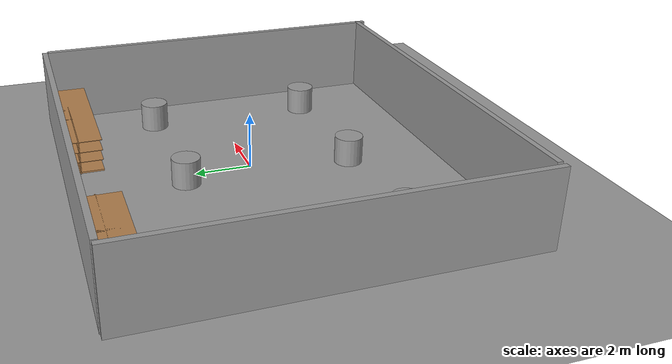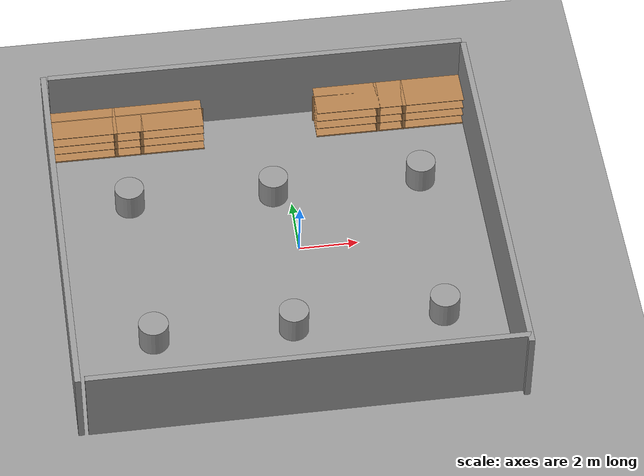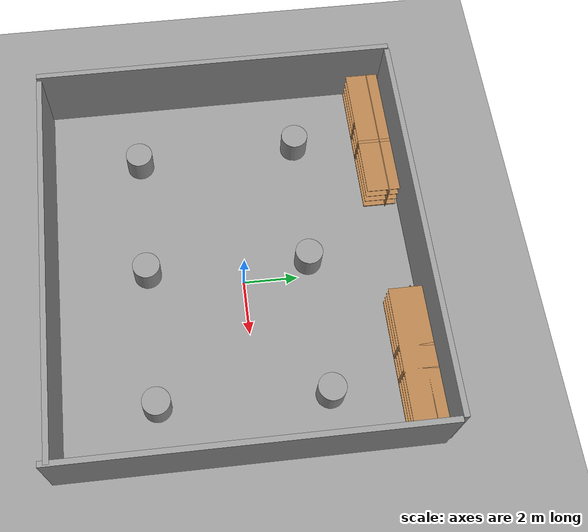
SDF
<sdf version="1.6">
 <world name="default">
  <model name="ground_plane_0">
   <static>1</static>
   <link name="link">
    <collision name="collision">
     <geometry><plane><normal>0 0 1</normal><size>100 100</size></plane></geometry>
     <surface><friction><ode><mu>100</mu><mu2>50</mu2></ode></friction></surface>
    </collision>
    <visual name="visual">
     <cast_shadows>0</cast_shadows>
     <geometry><plane><normal>0 0 1</normal><size>100 100</size></plane></geometry>
     <material>
      <script><uri>file://media/materials/scripts/gazebo.material</uri><name>Gazebo/Grey</name></script>
     </material>
    </visual>
    <velocity_decay><linear>0</linear><angular>0</angular></velocity_decay>
   </link>
   <pose>0.497681 0 0 0 -0 0</pose>
  </model>
  <model name="unit_cylinder_1">
   <pose>-0.652064 -3.4888 0.49912 0 -0 0</pose>
   <link name="link">
    <inertial>
     <mass>1</mass>
     <inertia><ixx>1</ixx><ixy>0</ixy><ixz>0</ixz><iyy>1</iyy><iyz>0</iyz><izz>1</izz></inertia>
    </inertial>
    <collision name="collision">
     <geometry><cylinder><radius>0.5</radius><length>1</length></cylinder></geometry>
    </collision>
    <visual name="visual">
     <geometry><cylinder><radius>0.5</radius><length>1</length></cylinder></geometry>
     <material>
      <script><uri>file://media/materials/scripts/gazebo.material</uri><name>Gazebo/Grey</name></script>
     </material>
    </visual>
    <velocity_decay><linear>0</linear><angular>0</angular></velocity_decay>
   </link>
   <static>0</static>
  </model>
  <model name="unit_cylinder_1_clone">
   <pose>-0.580608 2.45625 0.49912 0 0 -0.000345</pose>
   <link name="link">
    <inertial>
     <mass>1</mass>
     <inertia><ixx>1</ixx><ixy>0</ixy><ixz>0</ixz><iyy>1</iyy><iyz>0</iyz><izz>1</izz></inertia>
    </inertial>
    <collision name="collision">
     <geometry><cylinder><radius>0.5</radius><length>1</length></cylinder></geometry>
    </collision>
    <visual name="visual">
     <geometry><cylinder><radius>0.5</radius><length>1</length></cylinder></geometry>
     <material>
      <script><uri>file://media/materials/scripts/gazebo.material</uri><name>Gazebo/Grey</name></script>
     </material>
    </visual>
    <velocity_decay><linear>0</linear><angular>0</angular></velocity_decay>
   </link>
   <static>0</static>
  </model>
  <model name="bookshelf1_clone_4">
   <link name="link">
    <pose>-5.30085 4.14714 0 0 -0 0</pose>
    <inertial>
     <mass>18.106</mass>
     <inertia><ixx>0</ixx><ixy>0</ixy><ixz>0</ixz><iyy>0</iyy><iyz>0</iyz><izz>0</izz></inertia>
    </inertial>
    <velocity_decay><linear>0</linear><angular>0</angular></velocity_decay>
    <visual name="visual1">
     <pose>0 0.005 0.6 0 -0 0</pose>
     <geometry><box><size>5.34173 0.029897 1.2</size></box></geometry>
     <material>
      <script><uri>file://media/materials/scripts/gazebo.material</uri><name>Gazebo/Wood</name></script>
      <ambient>1 1 1 1</ambient>
      <diffuse>1 1 1 1</diffuse>
      <specular>0.2 0.2 0.2 1</specular>
      <emissive>0 0 0 1</emissive>
      <shader type="vertex"><normal_map>__default__</normal_map></shader>
     </material>
    </visual>
    <visual name="visual2">
     <pose>0.45 -0.195 0.6 0 -0 0</pose>
     <geometry><box><size>0.118103 1.22649 1.2</size></box></geometry>
     <material>
      <script><uri>file://media/materials/scripts/gazebo.material</uri><name>Gazebo/Wood</name></script>
      <ambient>1 1 1 1</ambient>
      <diffuse>1 1 1 1</diffuse>
      <specular>0.2 0.2 0.2 1</specular>
      <emissive>0 0 0 1</emissive>
      <shader type="vertex"><normal_map>__default__</normal_map></shader>
     </material>
    </visual>
    <visual name="visual3">
     <pose>-0.45 -0.195 0.6 0 -0 0</pose>
     <geometry><box><size>0.118103 1.22649 1.2</size></box></geometry>
     <material>
      <script><uri>file://media/materials/scripts/gazebo.material</uri><name>Gazebo/Wood</name></script>
      <ambient>1 1 1 1</ambient>
      <diffuse>1 1 1 1</diffuse>
      <specular>0.2 0.2 0.2 1</specular>
      <emissive>0 0 0 1</emissive>
      <shader type="vertex"><normal_map>__default__</normal_map></shader>
     </material>
    </visual>
    <visual name="visual4">
     <pose>0 -0.195 0.03 0 -0 0</pose>
     <geometry><box><size>5.22302 1.22649 0.06</size></box></geometry>
     <material>
      <script><uri>file://media/materials/scripts/gazebo.material</uri><name>Gazebo/Wood</name></script>
      <ambient>1 1 1 1</ambient>
      <diffuse>1 1 1 1</diffuse>
      <specular>0.2 0.2 0.2 1</specular>
      <emissive>0 0 0 1</emissive>
      <shader type="vertex"><normal_map>__default__</normal_map></shader>
     </material>
    </visual>
    <visual name="visual5">
     <pose>0 -0.195 1.19 0 -0 0</pose>
     <geometry><box><size>5.22302 1.22649 0.02</size></box></geometry>
     <material>
      <script><uri>file://media/materials/scripts/gazebo.material</uri><name>Gazebo/Wood</name></script>
      <ambient>1 1 1 1</ambient>
      <diffuse>1 1 1 1</diffuse>
      <specular>0.2 0.2 0.2 1</specular>
      <emissive>0 0 0 1</emissive>
      <shader type="vertex"><normal_map>__default__</normal_map></shader>
     </material>
    </visual>
    <visual name="visual6">
     <pose>0 -0.195 0.43 0 -0 0</pose>
     <geometry><box><size>5.22302 1.22649 0.02</size></box></geometry>
     <material>
      <script><uri>file://media/materials/scripts/gazebo.material</uri><name>Gazebo/Wood</name></script>
      <ambient>1 1 1 1</ambient>
      <diffuse>1 1 1 1</diffuse>
      <specular>0.2 0.2 0.2 1</specular>
      <emissive>0 0 0 1</emissive>
      <shader type="vertex"><normal_map>__default__</normal_map></shader>
     </material>
    </visual>
    <visual name="visual7">
     <pose>0 -0.195 0.8 0 -0 0</pose>
     <geometry><box><size>5.22302 1.22649 0.02</size></box></geometry>
     <material>
      <script><uri>file://media/materials/scripts/gazebo.material</uri><name>Gazebo/Wood</name></script>
      <ambient>1 1 1 1</ambient>
      <diffuse>1 1 1 1</diffuse>
      <specular>0.2 0.2 0.2 1</specular>
      <emissive>0 0 0 1</emissive>
      <shader type="vertex"><normal_map>__default__</normal_map></shader>
     </material>
    </visual>
    <collision name="left_side">
     <pose>0.45 -0.195 0.6 0 -0 0</pose>
     <geometry><box><size>0.118103 1.22649 1.2</size></box></geometry>
     <surface>
      <friction>
       <ode><mu>1</mu><mu2>1</mu2><fdir1>0 0 0</fdir1><slip1>0</slip1><slip2>0</slip2></ode>
       <torsional>
        <coefficient>1</coefficient>
        <patch_radius>0</patch_radius>
        <surface_radius>0</surface_radius>
        <use_patch_radius>1</use_patch_radius>
        <ode><slip>0</slip></ode>
       </torsional>
      </friction>
      <bounce><restitution_coefficient>0</restitution_coefficient><threshold>1e+06</threshold></bounce>
      <contact>
       <collide_without_contact>0</collide_without_contact>
       <collide_without_contact_bitmask>1</collide_without_contact_bitmask>
       <collide_bitmask>1</collide_bitmask>
       <ode>
        <soft_cfm>0</soft_cfm>
        <soft_erp>0.2</soft_erp>
        <kp>1e+13</kp>
        <kd>1</kd>
        <max_vel>0.01</max_vel>
        <min_depth>0</min_depth>
       </ode>
       <bullet>
        <split_impulse>1</split_impulse>
        <split_impulse_penetration_threshold>-0.01</split_impulse_penetration_threshold>
        <soft_cfm>0</soft_cfm>
        <soft_erp>0.2</soft_erp>
        <kp>1e+13</kp>
        <kd>1</kd>
       </bullet>
      </contact>
     </surface>
    </collision>
    <collision name="back">
     <pose>0 0.005 0.6 0 -0 0</pose>
     <geometry><box><size>5.34173 0.029897 1.2</size></box></geometry>
     <surface>
      <friction>
       <ode><mu>1</mu><mu2>1</mu2><fdir1>0 0 0</fdir1><slip1>0</slip1><slip2>0</slip2></ode>
       <torsional>
        <coefficient>1</coefficient>
        <patch_radius>0</patch_radius>
        <surface_radius>0</surface_radius>
        <use_patch_radius>1</use_patch_radius>
        <ode><slip>0</slip></ode>
       </torsional>
      </friction>
      <bounce><restitution_coefficient>0</restitution_coefficient><threshold>1e+06</threshold></bounce>
      <contact>
       <collide_without_contact>0</collide_without_contact>
       <collide_without_contact_bitmask>1</collide_without_contact_bitmask>
       <collide_bitmask>1</collide_bitmask>
       <ode>
        <soft_cfm>0</soft_cfm>
        <soft_erp>0.2</soft_erp>
        <kp>1e+13</kp>
        <kd>1</kd>
        <max_vel>0.01</max_vel>
        <min_depth>0</min_depth>
       </ode>
       <bullet>
        <split_impulse>1</split_impulse>
        <split_impulse_penetration_threshold>-0.01</split_impulse_penetration_threshold>
        <soft_cfm>0</soft_cfm>
        <soft_erp>0.2</soft_erp>
        <kp>1e+13</kp>
        <kd>1</kd>
       </bullet>
      </contact>
     </surface>
    </collision>
    <collision name="right_side">
     <pose>-0.45 -0.195 0.6 0 -0 0</pose>
     <geometry><box><size>0.118103 1.22649 1.2</size></box></geometry>
     <surface>
      <friction>
       <ode><mu>1</mu><mu2>1</mu2><fdir1>0 0 0</fdir1><slip1>0</slip1><slip2>0</slip2></ode>
       <torsional>
        <coefficient>1</coefficient>
        <patch_radius>0</patch_radius>
        <surface_radius>0</surface_radius>
        <use_patch_radius>1</use_patch_radius>
        <ode><slip>0</slip></ode>
       </torsional>
      </friction>
      <bounce><restitution_coefficient>0</restitution_coefficient><threshold>1e+06</threshold></bounce>
      <contact>
       <collide_without_contact>0</collide_without_contact>
       <collide_without_contact_bitmask>1</collide_without_contact_bitmask>
       <collide_bitmask>1</collide_bitmask>
       <ode>
        <soft_cfm>0</soft_cfm>
        <soft_erp>0.2</soft_erp>
        <kp>1e+13</kp>
        <kd>1</kd>
        <max_vel>0.01</max_vel>
        <min_depth>0</min_depth>
       </ode>
       <bullet>
        <split_impulse>1</split_impulse>
        <split_impulse_penetration_threshold>-0.01</split_impulse_penetration_threshold>
        <soft_cfm>0</soft_cfm>
        <soft_erp>0.2</soft_erp>
        <kp>1e+13</kp>
        <kd>1</kd>
       </bullet>
      </contact>
     </surface>
    </collision>
    <collision name="bottom">
     <pose>0 -0.195 0.03 0 -0 0</pose>
     <geometry><box><size>5.22302 1.22649 0.06</size></box></geometry>
     <surface>
      <friction>
       <ode><mu>1</mu><mu2>1</mu2><fdir1>0 0 0</fdir1><slip1>0</slip1><slip2>0</slip2></ode>
       <torsional>
        <coefficient>1</coefficient>
        <patch_radius>0</patch_radius>
        <surface_radius>0</surface_radius>
        <use_patch_radius>1</use_patch_radius>
        <ode><slip>0</slip></ode>
       </torsional>
      </friction>
      <bounce><restitution_coefficient>0</restitution_coefficient><threshold>1e+06</threshold></bounce>
      <contact>
       <collide_without_contact>0</collide_without_contact>
       <collide_without_contact_bitmask>1</collide_without_contact_bitmask>
       <collide_bitmask>1</collide_bitmask>
       <ode>
        <soft_cfm>0</soft_cfm>
        <soft_erp>0.2</soft_erp>
        <kp>1e+13</kp>
        <kd>1</kd>
        <max_vel>0.01</max_vel>
        <min_depth>0</min_depth>
       </ode>
       <bullet>
        <split_impulse>1</split_impulse>
        <split_impulse_penetration_threshold>-0.01</split_impulse_penetration_threshold>
        <soft_cfm>0</soft_cfm>
        <soft_erp>0.2</soft_erp>
        <kp>1e+13</kp>
        <kd>1</kd>
       </bullet>
      </contact>
     </surface>
    </collision>
    <collision name="low_shelf">
     <pose>0 -0.195 0.43 0 -0 0</pose>
     <geometry><box><size>5.22302 1.22649 0.02</size></box></geometry>
     <surface>
      <friction>
       <ode><mu>1</mu><mu2>1</mu2><fdir1>0 0 0</fdir1><slip1>0</slip1><slip2>0</slip2></ode>
       <torsional>
        <coefficient>1</coefficient>
        <patch_radius>0</patch_radius>
        <surface_radius>0</surface_radius>
        <use_patch_radius>1</use_patch_radius>
        <ode><slip>0</slip></ode>
       </torsional>
      </friction>
      <bounce><restitution_coefficient>0</restitution_coefficient><threshold>1e+06</threshold></bounce>
      <contact>
       <collide_without_contact>0</collide_without_contact>
       <collide_without_contact_bitmask>1</collide_without_contact_bitmask>
       <collide_bitmask>1</collide_bitmask>
       <ode>
        <soft_cfm>0</soft_cfm>
        <soft_erp>0.2</soft_erp>
        <kp>1e+13</kp>
        <kd>1</kd>
        <max_vel>0.01</max_vel>
        <min_depth>0</min_depth>
       </ode>
       <bullet>
        <split_impulse>1</split_impulse>
        <split_impulse_penetration_threshold>-0.01</split_impulse_penetration_threshold>
        <soft_cfm>0</soft_cfm>
        <soft_erp>0.2</soft_erp>
        <kp>1e+13</kp>
        <kd>1</kd>
       </bullet>
      </contact>
     </surface>
    </collision>
    <collision name="top">
     <pose>0 -0.195 1.19 0 -0 0</pose>
     <geometry><box><size>5.22302 1.22649 0.02</size></box></geometry>
     <surface>
      <friction>
       <ode><mu>1</mu><mu2>1</mu2><fdir1>0 0 0</fdir1><slip1>0</slip1><slip2>0</slip2></ode>
       <torsional>
        <coefficient>1</coefficient>
        <patch_radius>0</patch_radius>
        <surface_radius>0</surface_radius>
        <use_patch_radius>1</use_patch_radius>
        <ode><slip>0</slip></ode>
       </torsional>
      </friction>
      <bounce><restitution_coefficient>0</restitution_coefficient><threshold>1e+06</threshold></bounce>
      <contact>
       <collide_without_contact>0</collide_without_contact>
       <collide_without_contact_bitmask>1</collide_without_contact_bitmask>
       <collide_bitmask>1</collide_bitmask>
       <ode>
        <soft_cfm>0</soft_cfm>
        <soft_erp>0.2</soft_erp>
        <kp>1e+13</kp>
        <kd>1</kd>
        <max_vel>0.01</max_vel>
        <min_depth>0</min_depth>
       </ode>
       <bullet>
        <split_impulse>1</split_impulse>
        <split_impulse_penetration_threshold>-0.01</split_impulse_penetration_threshold>
        <soft_cfm>0</soft_cfm>
        <soft_erp>0.2</soft_erp>
        <kp>1e+13</kp>
        <kd>1</kd>
       </bullet>
      </contact>
     </surface>
    </collision>
    <collision name="high_shelf">
     <pose>0 -0.195 0.8 0 -0 0</pose>
     <geometry><box><size>5.22302 1.22649 0.02</size></box></geometry>
     <surface>
      <friction>
       <ode><mu>1</mu><mu2>1</mu2><fdir1>0 0 0</fdir1><slip1>0</slip1><slip2>0</slip2></ode>
       <torsional>
        <coefficient>1</coefficient>
        <patch_radius>0</patch_radius>
        <surface_radius>0</surface_radius>
        <use_patch_radius>1</use_patch_radius>
        <ode><slip>0</slip></ode>
       </torsional>
      </friction>
      <bounce><restitution_coefficient>0</restitution_coefficient><threshold>1e+06</threshold></bounce>
      <contact>
       <collide_without_contact>0</collide_without_contact>
       <collide_without_contact_bitmask>1</collide_without_contact_bitmask>
       <collide_bitmask>1</collide_bitmask>
       <ode>
        <soft_cfm>0</soft_cfm>
        <soft_erp>0.2</soft_erp>
        <kp>1e+13</kp>
        <kd>1</kd>
        <max_vel>0.01</max_vel>
        <min_depth>0</min_depth>
       </ode>
       <bullet>
        <split_impulse>1</split_impulse>
        <split_impulse_penetration_threshold>-0.01</split_impulse_penetration_threshold>
        <soft_cfm>0</soft_cfm>
        <soft_erp>0.2</soft_erp>
        <kp>1e+13</kp>
        <kd>1</kd>
       </bullet>
      </contact>
     </surface>
    </collision>
   </link>
   <static>1</static>
   <pose>9.18802 1.64622 0 0 -0 0</pose>
  </model>
  <model name="bookshelf1_clone_4_clone_3">
   <link name="link">
    <pose>-5.30085 4.14714 0 0 -0 0</pose>
    <inertial>
     <mass>18.106</mass>
     <inertia><ixx>0</ixx><ixy>0</ixy><ixz>0</ixz><iyy>0</iyy><iyz>0</iyz><izz>0</izz></inertia>
    </inertial>
    <velocity_decay><linear>0</linear><angular>0</angular></velocity_decay>
    <visual name="visual1">
     <pose>0 0.005 0.6 0 -0 0</pose>
     <geometry><box><size>5.34173 0.029897 1.2</size></box></geometry>
     <material>
      <script><uri>file://media/materials/scripts/gazebo.material</uri><name>Gazebo/Wood</name></script>
      <ambient>1 1 1 1</ambient>
      <diffuse>1 1 1 1</diffuse>
      <specular>0.2 0.2 0.2 1</specular>
      <emissive>0 0 0 1</emissive>
      <shader type="vertex"><normal_map>__default__</normal_map></shader>
     </material>
    </visual>
    <visual name="visual2">
     <pose>0.45 -0.195 0.6 0 -0 0</pose>
     <geometry><box><size>0.118103 1.22649 1.2</size></box></geometry>
     <material>
      <script><uri>file://media/materials/scripts/gazebo.material</uri><name>Gazebo/Wood</name></script>
      <ambient>1 1 1 1</ambient>
      <diffuse>1 1 1 1</diffuse>
      <specular>0.2 0.2 0.2 1</specular>
      <emissive>0 0 0 1</emissive>
      <shader type="vertex"><normal_map>__default__</normal_map></shader>
     </material>
    </visual>
    <visual name="visual3">
     <pose>-0.45 -0.195 0.6 0 -0 0</pose>
     <geometry><box><size>0.118103 1.22649 1.2</size></box></geometry>
     <material>
      <script><uri>file://media/materials/scripts/gazebo.material</uri><name>Gazebo/Wood</name></script>
      <ambient>1 1 1 1</ambient>
      <diffuse>1 1 1 1</diffuse>
      <specular>0.2 0.2 0.2 1</specular>
      <emissive>0 0 0 1</emissive>
      <shader type="vertex"><normal_map>__default__</normal_map></shader>
     </material>
    </visual>
    <visual name="visual4">
     <pose>0 -0.195 0.03 0 -0 0</pose>
     <geometry><box><size>5.22302 1.22649 0.06</size></box></geometry>
     <material>
      <script><uri>file://media/materials/scripts/gazebo.material</uri><name>Gazebo/Wood</name></script>
      <ambient>1 1 1 1</ambient>
      <diffuse>1 1 1 1</diffuse>
      <specular>0.2 0.2 0.2 1</specular>
      <emissive>0 0 0 1</emissive>
      <shader type="vertex"><normal_map>__default__</normal_map></shader>
     </material>
    </visual>
    <visual name="visual5">
     <pose>0 -0.195 1.19 0 -0 0</pose>
     <geometry><box><size>5.22302 1.22649 0.02</size></box></geometry>
     <material>
      <script><uri>file://media/materials/scripts/gazebo.material</uri><name>Gazebo/Wood</name></script>
      <ambient>1 1 1 1</ambient>
      <diffuse>1 1 1 1</diffuse>
      <specular>0.2 0.2 0.2 1</specular>
      <emissive>0 0 0 1</emissive>
      <shader type="vertex"><normal_map>__default__</normal_map></shader>
     </material>
    </visual>
    <visual name="visual6">
     <pose>0 -0.195 0.43 0 -0 0</pose>
     <geometry><box><size>5.22302 1.22649 0.02</size></box></geometry>
     <material>
      <script><uri>file://media/materials/scripts/gazebo.material</uri><name>Gazebo/Wood</name></script>
      <ambient>1 1 1 1</ambient>
      <diffuse>1 1 1 1</diffuse>
      <specular>0.2 0.2 0.2 1</specular>
      <emissive>0 0 0 1</emissive>
      <shader type="vertex"><normal_map>__default__</normal_map></shader>
     </material>
    </visual>
    <visual name="visual7">
     <pose>0 -0.195 0.8 0 -0 0</pose>
     <geometry><box><size>5.22302 1.22649 0.02</size></box></geometry>
     <material>
      <script><uri>file://media/materials/scripts/gazebo.material</uri><name>Gazebo/Wood</name></script>
      <ambient>1 1 1 1</ambient>
      <diffuse>1 1 1 1</diffuse>
      <specular>0.2 0.2 0.2 1</specular>
      <emissive>0 0 0 1</emissive>
      <shader type="vertex"><normal_map>__default__</normal_map></shader>
     </material>
    </visual>
    <collision name="left_side">
     <pose>0.45 -0.195 0.6 0 -0 0</pose>
     <geometry><box><size>0.118103 1.22649 1.2</size></box></geometry>
     <surface>
      <friction>
       <ode><mu>1</mu><mu2>1</mu2><fdir1>0 0 0</fdir1><slip1>0</slip1><slip2>0</slip2></ode>
       <torsional>
        <coefficient>1</coefficient>
        <patch_radius>0</patch_radius>
        <surface_radius>0</surface_radius>
        <use_patch_radius>1</use_patch_radius>
        <ode><slip>0</slip></ode>
       </torsional>
      </friction>
      <bounce><restitution_coefficient>0</restitution_coefficient><threshold>1e+06</threshold></bounce>
      <contact>
       <collide_without_contact>0</collide_without_contact>
       <collide_without_contact_bitmask>1</collide_without_contact_bitmask>
       <collide_bitmask>1</collide_bitmask>
       <ode>
        <soft_cfm>0</soft_cfm>
        <soft_erp>0.2</soft_erp>
        <kp>1e+13</kp>
        <kd>1</kd>
        <max_vel>0.01</max_vel>
        <min_depth>0</min_depth>
       </ode>
       <bullet>
        <split_impulse>1</split_impulse>
        <split_impulse_penetration_threshold>-0.01</split_impulse_penetration_threshold>
        <soft_cfm>0</soft_cfm>
        <soft_erp>0.2</soft_erp>
        <kp>1e+13</kp>
        <kd>1</kd>
       </bullet>
      </contact>
     </surface>
    </collision>
    <collision name="back">
     <pose>0 0.005 0.6 0 -0 0</pose>
     <geometry><box><size>5.34173 0.029897 1.2</size></box></geometry>
     <surface>
      <friction>
       <ode><mu>1</mu><mu2>1</mu2><fdir1>0 0 0</fdir1><slip1>0</slip1><slip2>0</slip2></ode>
       <torsional>
        <coefficient>1</coefficient>
        <patch_radius>0</patch_radius>
        <surface_radius>0</surface_radius>
        <use_patch_radius>1</use_patch_radius>
        <ode><slip>0</slip></ode>
       </torsional>
      </friction>
      <bounce><restitution_coefficient>0</restitution_coefficient><threshold>1e+06</threshold></bounce>
      <contact>
       <collide_without_contact>0</collide_without_contact>
       <collide_without_contact_bitmask>1</collide_without_contact_bitmask>
       <collide_bitmask>1</collide_bitmask>
       <ode>
        <soft_cfm>0</soft_cfm>
        <soft_erp>0.2</soft_erp>
        <kp>1e+13</kp>
        <kd>1</kd>
        <max_vel>0.01</max_vel>
        <min_depth>0</min_depth>
       </ode>
       <bullet>
        <split_impulse>1</split_impulse>
        <split_impulse_penetration_threshold>-0.01</split_impulse_penetration_threshold>
        <soft_cfm>0</soft_cfm>
        <soft_erp>0.2</soft_erp>
        <kp>1e+13</kp>
        <kd>1</kd>
       </bullet>
      </contact>
     </surface>
    </collision>
    <collision name="right_side">
     <pose>-0.45 -0.195 0.6 0 -0 0</pose>
     <geometry><box><size>0.118103 1.22649 1.2</size></box></geometry>
     <surface>
      <friction>
       <ode><mu>1</mu><mu2>1</mu2><fdir1>0 0 0</fdir1><slip1>0</slip1><slip2>0</slip2></ode>
       <torsional>
        <coefficient>1</coefficient>
        <patch_radius>0</patch_radius>
        <surface_radius>0</surface_radius>
        <use_patch_radius>1</use_patch_radius>
        <ode><slip>0</slip></ode>
       </torsional>
      </friction>
      <bounce><restitution_coefficient>0</restitution_coefficient><threshold>1e+06</threshold></bounce>
      <contact>
       <collide_without_contact>0</collide_without_contact>
       <collide_without_contact_bitmask>1</collide_without_contact_bitmask>
       <collide_bitmask>1</collide_bitmask>
       <ode>
        <soft_cfm>0</soft_cfm>
        <soft_erp>0.2</soft_erp>
        <kp>1e+13</kp>
        <kd>1</kd>
        <max_vel>0.01</max_vel>
        <min_depth>0</min_depth>
       </ode>
       <bullet>
        <split_impulse>1</split_impulse>
        <split_impulse_penetration_threshold>-0.01</split_impulse_penetration_threshold>
        <soft_cfm>0</soft_cfm>
        <soft_erp>0.2</soft_erp>
        <kp>1e+13</kp>
        <kd>1</kd>
       </bullet>
      </contact>
     </surface>
    </collision>
    <collision name="bottom">
     <pose>0 -0.195 0.03 0 -0 0</pose>
     <geometry><box><size>5.22302 1.22649 0.06</size></box></geometry>
     <surface>
      <friction>
       <ode><mu>1</mu><mu2>1</mu2><fdir1>0 0 0</fdir1><slip1>0</slip1><slip2>0</slip2></ode>
       <torsional>
        <coefficient>1</coefficient>
        <patch_radius>0</patch_radius>
        <surface_radius>0</surface_radius>
        <use_patch_radius>1</use_patch_radius>
        <ode><slip>0</slip></ode>
       </torsional>
      </friction>
      <bounce><restitution_coefficient>0</restitution_coefficient><threshold>1e+06</threshold></bounce>
      <contact>
       <collide_without_contact>0</collide_without_contact>
       <collide_without_contact_bitmask>1</collide_without_contact_bitmask>
       <collide_bitmask>1</collide_bitmask>
       <ode>
        <soft_cfm>0</soft_cfm>
        <soft_erp>0.2</soft_erp>
        <kp>1e+13</kp>
        <kd>1</kd>
        <max_vel>0.01</max_vel>
        <min_depth>0</min_depth>
       </ode>
       <bullet>
        <split_impulse>1</split_impulse>
        <split_impulse_penetration_threshold>-0.01</split_impulse_penetration_threshold>
        <soft_cfm>0</soft_cfm>
        <soft_erp>0.2</soft_erp>
        <kp>1e+13</kp>
        <kd>1</kd>
       </bullet>
      </contact>
     </surface>
    </collision>
    <collision name="low_shelf">
     <pose>0 -0.195 0.43 0 -0 0</pose>
     <geometry><box><size>5.22302 1.22649 0.02</size></box></geometry>
     <surface>
      <friction>
       <ode><mu>1</mu><mu2>1</mu2><fdir1>0 0 0</fdir1><slip1>0</slip1><slip2>0</slip2></ode>
       <torsional>
        <coefficient>1</coefficient>
        <patch_radius>0</patch_radius>
        <surface_radius>0</surface_radius>
        <use_patch_radius>1</use_patch_radius>
        <ode><slip>0</slip></ode>
       </torsional>
      </friction>
      <bounce><restitution_coefficient>0</restitution_coefficient><threshold>1e+06</threshold></bounce>
      <contact>
       <collide_without_contact>0</collide_without_contact>
       <collide_without_contact_bitmask>1</collide_without_contact_bitmask>
       <collide_bitmask>1</collide_bitmask>
       <ode>
        <soft_cfm>0</soft_cfm>
        <soft_erp>0.2</soft_erp>
        <kp>1e+13</kp>
        <kd>1</kd>
        <max_vel>0.01</max_vel>
        <min_depth>0</min_depth>
       </ode>
       <bullet>
        <split_impulse>1</split_impulse>
        <split_impulse_penetration_threshold>-0.01</split_impulse_penetration_threshold>
        <soft_cfm>0</soft_cfm>
        <soft_erp>0.2</soft_erp>
        <kp>1e+13</kp>
        <kd>1</kd>
       </bullet>
      </contact>
     </surface>
    </collision>
    <collision name="top">
     <pose>0 -0.195 1.19 0 -0 0</pose>
     <geometry><box><size>5.22302 1.22649 0.02</size></box></geometry>
     <surface>
      <friction>
       <ode><mu>1</mu><mu2>1</mu2><fdir1>0 0 0</fdir1><slip1>0</slip1><slip2>0</slip2></ode>
       <torsional>
        <coefficient>1</coefficient>
        <patch_radius>0</patch_radius>
        <surface_radius>0</surface_radius>
        <use_patch_radius>1</use_patch_radius>
        <ode><slip>0</slip></ode>
       </torsional>
      </friction>
      <bounce><restitution_coefficient>0</restitution_coefficient><threshold>1e+06</threshold></bounce>
      <contact>
       <collide_without_contact>0</collide_without_contact>
       <collide_without_contact_bitmask>1</collide_without_contact_bitmask>
       <collide_bitmask>1</collide_bitmask>
       <ode>
        <soft_cfm>0</soft_cfm>
        <soft_erp>0.2</soft_erp>
        <kp>1e+13</kp>
        <kd>1</kd>
        <max_vel>0.01</max_vel>
        <min_depth>0</min_depth>
       </ode>
       <bullet>
        <split_impulse>1</split_impulse>
        <split_impulse_penetration_threshold>-0.01</split_impulse_penetration_threshold>
        <soft_cfm>0</soft_cfm>
        <soft_erp>0.2</soft_erp>
        <kp>1e+13</kp>
        <kd>1</kd>
       </bullet>
      </contact>
     </surface>
    </collision>
    <collision name="high_shelf">
     <pose>0 -0.195 0.8 0 -0 0</pose>
     <geometry><box><size>5.22302 1.22649 0.02</size></box></geometry>
     <surface>
      <friction>
       <ode><mu>1</mu><mu2>1</mu2><fdir1>0 0 0</fdir1><slip1>0</slip1><slip2>0</slip2></ode>
       <torsional>
        <coefficient>1</coefficient>
        <patch_radius>0</patch_radius>
        <surface_radius>0</surface_radius>
        <use_patch_radius>1</use_patch_radius>
        <ode><slip>0</slip></ode>
       </torsional>
      </friction>
      <bounce><restitution_coefficient>0</restitution_coefficient><threshold>1e+06</threshold></bounce>
      <contact>
       <collide_without_contact>0</collide_without_contact>
       <collide_without_contact_bitmask>1</collide_without_contact_bitmask>
       <collide_bitmask>1</collide_bitmask>
       <ode>
        <soft_cfm>0</soft_cfm>
        <soft_erp>0.2</soft_erp>
        <kp>1e+13</kp>
        <kd>1</kd>
        <max_vel>0.01</max_vel>
        <min_depth>0</min_depth>
       </ode>
       <bullet>
        <split_impulse>1</split_impulse>
        <split_impulse_penetration_threshold>-0.01</split_impulse_penetration_threshold>
        <soft_cfm>0</soft_cfm>
        <soft_erp>0.2</soft_erp>
        <kp>1e+13</kp>
        <kd>1</kd>
       </bullet>
      </contact>
     </surface>
    </collision>
   </link>
   <static>1</static>
   <pose>0.00429 1.59567 0 0 -0 0</pose>
  </model>
  <model name="grey_wall">
   <link name="link">
    <pose>5.06743 -3.6455 1.4 0 -0 0</pose>
    <inertial>
     <inertia><ixx>nan</ixx><ixy>0</ixy><ixz>0</ixz><iyy>nan</iyy><iyz>0</iyz><izz>nan</izz></inertia>
     <mass>0</mass>
    </inertial>
    <visual name="visual">
     <cast_shadows>0</cast_shadows>
     <geometry><box><size>14.3835 0.2 2.8</size></box></geometry>
     <material>
      <script>
       <uri>model://grey_wall/materials/scripts</uri>
       <uri>model://grey_wall/materials/textures</uri>
       <name>vrc/grey_wall</name>
      </script>
      <ambient>1 1 1 1</ambient>
      <diffuse>1 1 1 1</diffuse>
      <specular>0 0 0 1</specular>
      <emissive>0 0 0 1</emissive>
      <shader type="vertex"><normal_map>__default__</normal_map></shader>
     </material>
    </visual>
    <collision name="collision">
     <geometry><box><size>14.3835 0.2 2.8</size></box></geometry>
     <surface>
      <friction>
       <ode><mu>1</mu><mu2>1</mu2><fdir1>0 0 0</fdir1><slip1>0</slip1><slip2>0</slip2></ode>
       <torsional>
        <coefficient>1</coefficient>
        <patch_radius>0</patch_radius>
        <surface_radius>0</surface_radius>
        <use_patch_radius>1</use_patch_radius>
        <ode><slip>0</slip></ode>
       </torsional>
      </friction>
      <bounce><restitution_coefficient>0</restitution_coefficient><threshold>1e+06</threshold></bounce>
      <contact>
       <collide_without_contact>0</collide_without_contact>
       <collide_without_contact_bitmask>1</collide_without_contact_bitmask>
       <collide_bitmask>1</collide_bitmask>
       <ode>
        <soft_cfm>0</soft_cfm>
        <soft_erp>0.2</soft_erp>
        <kp>1e+13</kp>
        <kd>1</kd>
        <max_vel>0.01</max_vel>
        <min_depth>0</min_depth>
       </ode>
       <bullet>
        <split_impulse>1</split_impulse>
        <split_impulse_penetration_threshold>-0.01</split_impulse_penetration_threshold>
        <soft_cfm>0</soft_cfm>
        <soft_erp>0.2</soft_erp>
        <kp>1e+13</kp>
        <kd>1</kd>
       </bullet>
      </contact>
     </surface>
    </collision>
   </link>
   <link name="link_clone">
    <pose>5.1625 -16.8753 1.4 0 -0 0</pose>
    <inertial>
     <inertia><ixx>nan</ixx><ixy>0</ixy><ixz>0</ixz><iyy>nan</iyy><iyz>0</iyz><izz>nan</izz></inertia>
     <mass>0</mass>
    </inertial>
    <visual name="visual">
     <cast_shadows>0</cast_shadows>
     <geometry><box><size>14.3835 0.2 2.8</size></box></geometry>
     <material>
      <script>
       <uri>model://grey_wall/materials/scripts</uri>
       <uri>model://grey_wall/materials/textures</uri>
       <name>vrc/grey_wall</name>
      </script>
      <ambient>1 1 1 1</ambient>
      <diffuse>1 1 1 1</diffuse>
      <specular>0 0 0 1</specular>
      <emissive>0 0 0 1</emissive>
      <shader type="vertex"><normal_map>__default__</normal_map></shader>
     </material>
    </visual>
    <collision name="collision">
     <geometry><box><size>14.3835 0.2 2.8</size></box></geometry>
     <surface>
      <friction>
       <ode><mu>1</mu><mu2>1</mu2><fdir1>0 0 0</fdir1><slip1>0</slip1><slip2>0</slip2></ode>
       <torsional>
        <coefficient>1</coefficient>
        <patch_radius>0</patch_radius>
        <surface_radius>0</surface_radius>
        <use_patch_radius>1</use_patch_radius>
        <ode><slip>0</slip></ode>
       </torsional>
      </friction>
      <bounce><restitution_coefficient>0</restitution_coefficient><threshold>1e+06</threshold></bounce>
      <contact>
       <collide_without_contact>0</collide_without_contact>
       <collide_without_contact_bitmask>1</collide_without_contact_bitmask>
       <collide_bitmask>1</collide_bitmask>
       <ode>
        <soft_cfm>0</soft_cfm>
        <soft_erp>0.2</soft_erp>
        <kp>1e+13</kp>
        <kd>1</kd>
        <max_vel>0.01</max_vel>
        <min_depth>0</min_depth>
       </ode>
       <bullet>
        <split_impulse>1</split_impulse>
        <split_impulse_penetration_threshold>-0.01</split_impulse_penetration_threshold>
        <soft_cfm>0</soft_cfm>
        <soft_erp>0.2</soft_erp>
        <kp>1e+13</kp>
        <kd>1</kd>
       </bullet>
      </contact>
     </surface>
    </collision>
   </link>
   <link name="link_clone_0">
    <pose>-2.26665 -10.2747 1.4 0 -0 1.572</pose>
    <inertial>
     <inertia><ixx>nan</ixx><ixy>0</ixy><ixz>0</ixz><iyy>nan</iyy><iyz>0</iyz><izz>nan</izz></inertia>
     <mass>0</mass>
    </inertial>
    <visual name="visual">
     <cast_shadows>0</cast_shadows>
     <geometry><box><size>13.3987 0.2 2.8</size></box></geometry>
     <material>
      <script>
       <uri>model://grey_wall/materials/scripts</uri>
       <uri>model://grey_wall/materials/textures</uri>
       <name>vrc/grey_wall</name>
      </script>
      <ambient>1 1 1 1</ambient>
      <diffuse>1 1 1 1</diffuse>
      <specular>0 0 0 1</specular>
      <emissive>0 0 0 1</emissive>
      <shader type="pixel"/>
     </material>
    </visual>
    <collision name="collision">
     <geometry><box><size>13.3987 0.2 2.8</size></box></geometry>
     <surface>
      <friction>
       <ode><mu>1</mu><mu2>1</mu2><fdir1>0 0 0</fdir1><slip1>0</slip1><slip2>0</slip2></ode>
       <torsional>
        <coefficient>1</coefficient>
        <patch_radius>0</patch_radius>
        <surface_radius>0</surface_radius>
        <use_patch_radius>1</use_patch_radius>
        <ode><slip>0</slip></ode>
       </torsional>
      </friction>
      <bounce><restitution_coefficient>0</restitution_coefficient><threshold>1e+06</threshold></bounce>
      <contact>
       <collide_without_contact>0</collide_without_contact>
       <collide_without_contact_bitmask>1</collide_without_contact_bitmask>
       <collide_bitmask>1</collide_bitmask>
       <ode>
        <soft_cfm>0</soft_cfm>
        <soft_erp>0.2</soft_erp>
        <kp>1e+13</kp>
        <kd>1</kd>
        <max_vel>0.01</max_vel>
        <min_depth>0</min_depth>
       </ode>
       <bullet>
        <split_impulse>1</split_impulse>
        <split_impulse_penetration_threshold>-0.01</split_impulse_penetration_threshold>
        <soft_cfm>0</soft_cfm>
        <soft_erp>0.2</soft_erp>
        <kp>1e+13</kp>
        <kd>1</kd>
       </bullet>
      </contact>
     </surface>
    </collision>
   </link>
   <link name="link_clone_0_clone">
    <pose>12.3103 -10.4604 1.4 0 -0 1.572</pose>
    <inertial>
     <inertia><ixx>nan</ixx><ixy>0</ixy><ixz>0</ixz><iyy>nan</iyy><iyz>0</iyz><izz>nan</izz></inertia>
     <mass>0</mass>
    </inertial>
    <visual name="visual">
     <cast_shadows>0</cast_shadows>
     <geometry><box><size>13.3987 0.2 2.8</size></box></geometry>
     <material>
      <script>
       <uri>model://grey_wall/materials/scripts</uri>
       <uri>model://grey_wall/materials/textures</uri>
       <name>vrc/grey_wall</name>
      </script>
      <ambient>1 1 1 1</ambient>
      <diffuse>1 1 1 1</diffuse>
      <specular>0 0 0 1</specular>
      <emissive>0 0 0 1</emissive>
      <shader type="pixel"/>
     </material>
    </visual>
    <collision name="collision">
     <geometry><box><size>13.3987 0.2 2.8</size></box></geometry>
     <surface>
      <friction>
       <ode><mu>1</mu><mu2>1</mu2><fdir1>0 0 0</fdir1><slip1>0</slip1><slip2>0</slip2></ode>
       <torsional>
        <coefficient>1</coefficient>
        <patch_radius>0</patch_radius>
        <surface_radius>0</surface_radius>
        <use_patch_radius>1</use_patch_radius>
        <ode><slip>0</slip></ode>
       </torsional>
      </friction>
      <bounce><restitution_coefficient>0</restitution_coefficient><threshold>1e+06</threshold></bounce>
      <contact>
       <collide_without_contact>0</collide_without_contact>
       <collide_without_contact_bitmask>1</collide_without_contact_bitmask>
       <collide_bitmask>1</collide_bitmask>
       <ode>
        <soft_cfm>0</soft_cfm>
        <soft_erp>0.2</soft_erp>
        <kp>1e+13</kp>
        <kd>1</kd>
        <max_vel>0.01</max_vel>
        <min_depth>0</min_depth>
       </ode>
       <bullet>
        <split_impulse>1</split_impulse>
        <split_impulse_penetration_threshold>-0.01</split_impulse_penetration_threshold>
        <soft_cfm>0</soft_cfm>
        <soft_erp>0.2</soft_erp>
        <kp>1e+13</kp>
        <kd>1</kd>
       </bullet>
      </contact>
     </surface>
    </collision>
   </link>
   <static>1</static>
   <pose>-5.76854 9.98081 0 0 -0 0</pose>
  </model>
  <model name="unit_cylinder_1_clone_0">
   <pose>-5.30722 -3.45818 0.5 0 -0 0</pose>
   <link name="link">
    <inertial>
     <mass>1</mass>
     <inertia><ixx>1</ixx><ixy>0</ixy><ixz>0</ixz><iyy>1</iyy><iyz>0</iyz><izz>1</izz></inertia>
    </inertial>
    <collision name="collision">
     <geometry><cylinder><radius>0.5</radius><length>1</length></cylinder></geometry>
    </collision>
    <visual name="visual">
     <geometry><cylinder><radius>0.5</radius><length>1</length></cylinder></geometry>
     <material>
      <script><uri>file://media/materials/scripts/gazebo.material</uri><name>Gazebo/Grey</name></script>
     </material>
    </visual>
    <velocity_decay><linear>0</linear><angular>0</angular></velocity_decay>
   </link>
   <static>0</static>
  </model>
  <model name="unit_cylinder_1_clone_1">
   <pose>4.40345 -3.48315 0.5 0 -0 0</pose>
   <link name="link">
    <inertial>
     <mass>1</mass>
     <inertia><ixx>1</ixx><ixy>0</ixy><ixz>0</ixz><iyy>1</iyy><iyz>0</iyz><izz>1</izz></inertia>
    </inertial>
    <collision name="collision">
     <geometry><cylinder><radius>0.5</radius><length>1</length></cylinder></geometry>
    </collision>
    <visual name="visual">
     <geometry><cylinder><radius>0.5</radius><length>1</length></cylinder></geometry>
     <material>
      <script><uri>file://media/materials/scripts/gazebo.material</uri><name>Gazebo/Grey</name></script>
     </material>
    </visual>
    <velocity_decay><linear>0</linear><angular>0</angular></velocity_decay>
   </link>
   <static>0</static>
  </model>
  <model name="unit_cylinder_1_clone_2">
   <pose>-5.5164 2.56729 0.5 0 -0 0</pose>
   <link name="link">
    <inertial>
     <mass>1</mass>
     <inertia><ixx>1</ixx><ixy>0</ixy><ixz>0</ixz><iyy>1</iyy><iyz>0</iyz><izz>1</izz></inertia>
    </inertial>
    <collision name="collision">
     <geometry><cylinder><radius>0.5</radius><length>1</length></cylinder></geometry>
    </collision>
    <visual name="visual">
     <geometry><cylinder><radius>0.5</radius><length>1</length></cylinder></geometry>
     <material>
      <script><uri>file://media/materials/scripts/gazebo.material</uri><name>Gazebo/Grey</name></script>
     </material>
    </visual>
    <velocity_decay><linear>0</linear><angular>0</angular></velocity_decay>
   </link>
   <static>0</static>
  </model>
  <model name="unit_cylinder_1_clone_3">
   <pose>4.53575 2.52939 0.5 0 -0 0</pose>
   <link name="link">
    <inertial>
     <mass>1</mass>
     <inertia><ixx>1</ixx><ixy>0</ixy><ixz>0</ixz><iyy>1</iyy><iyz>0</iyz><izz>1</izz></inertia>
    </inertial>
    <collision name="collision">
     <geometry><cylinder><radius>0.5</radius><length>1</length></cylinder></geometry>
    </collision>
    <visual name="visual">
     <geometry><cylinder><radius>0.5</radius><length>1</length></cylinder></geometry>
     <material>
      <script><uri>file://media/materials/scripts/gazebo.material</uri><name>Gazebo/Grey</name></script>
     </material>
    </visual>
    <velocity_decay><linear>0</linear><angular>0</angular></velocity_decay>
   </link>
   <static>0</static>
  </model>
 </world>
</sdf>
